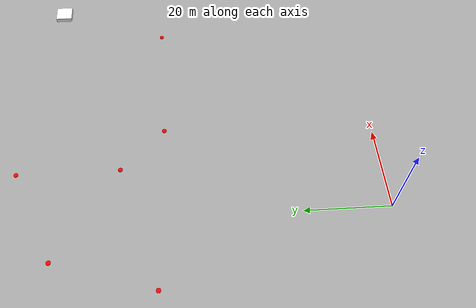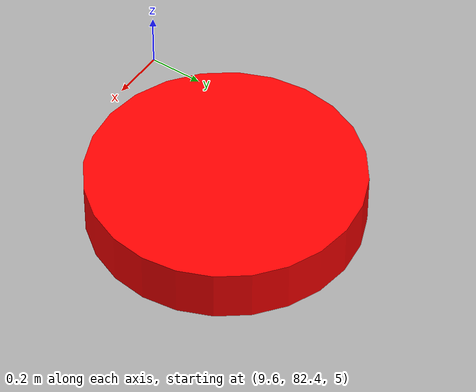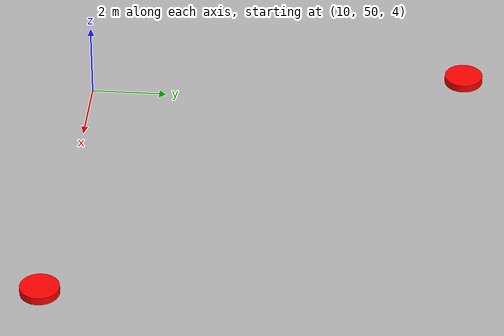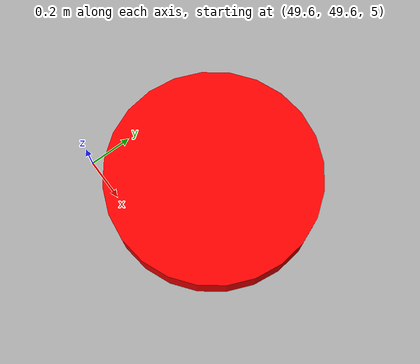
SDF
<sdf version="1.9">
 <world name="aerothon_ground2">
  <physics name="1ms" type="ignore">
   <max_step_size>0.001</max_step_size>
   <real_time_factor>1.0</real_time_factor>
  </physics>
  <plugin filename="gz-sim-physics-system" name="gz::sim::systems::Physics"/>
  <plugin filename="gz-sim-sensors-system" name="gz::sim::systems::Sensors">
   <render_engine>ogre2</render_engine>
  </plugin>
  <plugin filename="gz-sim-user-commands-system" name="gz::sim::systems::UserCommands"/>
  <plugin filename="gz-sim-scene-broadcaster-system" name="gz::sim::systems::SceneBroadcaster"/>
  <plugin filename="gz-sim-imu-system" name="gz::sim::systems::Imu"/>
  <plugin filename="gz-sim-navsat-system" name="gz::sim::systems::NavSat"/>
  <scene><ambient>1.0 1.0 1.0</ambient><background>0.8 0.8 0.8</background></scene>
  <spherical_coordinates>
   <latitude_deg>-35.363262</latitude_deg>
   <longitude_deg>149.165237</longitude_deg>
   <elevation>584</elevation>
   <heading_deg>0</heading_deg>
   <surface_model>EARTH_WGS84</surface_model>
  </spherical_coordinates>
  <light type="directional" name="sun">
   <pose>0 0 10 0 0 0</pose>
   <diffuse>0.8 0.8 0.8 1</diffuse>
   <specular>0.8 0.8 0.8 1</specular>
   <attenuation>
    <range>1000</range>
    <constant>0.9</constant>
    <linear>0.01</linear>
    <quadratic>0.001</quadratic>
   </attenuation>
   <direction>-0.5 0.1 -0.9</direction>
  </light>
  <model name="axes">
   <static>1</static>
   <link name="link">
    <visual name="r">
     <cast_shadows>0</cast_shadows>
     <pose>5 0 0.1 0 0 0</pose>
     <geometry><box><size>10 0.01 0.01</size></box></geometry>
     <material>
      <ambient>1 0 0 0.8</ambient>
      <diffuse>1 0 0 0.8</diffuse>
      <emissive>1 0 0 0.8</emissive>
      <specular>0.5 0.5 0.5 0.8</specular>
     </material>
    </visual>
    <visual name="g">
     <cast_shadows>0</cast_shadows>
     <pose>0 5 0.1 0 0 0</pose>
     <geometry><box><size>0.01 10 0.01</size></box></geometry>
     <material>
      <ambient>0 1 0 0.8</ambient>
      <diffuse>0 1 0 0.8</diffuse>
      <emissive>0 1 0 0.8</emissive>
      <specular>0.5 0.5 0.5 0.8</specular>
     </material>
    </visual>
    <visual name="b">
     <cast_shadows>0</cast_shadows>
     <pose>0 0 5.1 0 0 0</pose>
     <geometry><box><size>0.01 0.01 10</size></box></geometry>
     <material>
      <ambient>0 0 1 0.8</ambient>
      <diffuse>0 0 1 0.8</diffuse>
      <emissive>0 0 1 0.8</emissive>
      <specular>0.5 0.5 0.5 0.8</specular>
     </material>
    </visual>
    <sensor name="navsat_sensor" type="navsat"><always_on>1</always_on><update_rate>1</update_rate></sensor>
   </link>
  </model>
  <include><uri>model://hotspot.sdf</uri><name>h1</name><pose degrees="true">50 50 5 0 0 0</pose></include>
  <include><name>h2</name><uri>model://hotspot.sdf</uri><pose degrees="true">20 50 5 0 0 0</pose></include>
  <include><name>h3</name><uri>model://hotspot.sdf</uri><pose degrees="true">-18 52 5 0 0 0</pose></include>
  <include><name>h4</name><uri>model://hotspot.sdf</uri><pose degrees="true">10 83 5 0 0 0</pose></include>
  <include><name>h5</name><uri>model://hotspot.sdf</uri><pose degrees="true">10 60 5 0 0 0</pose></include>
  <include><name>h6</name><uri>model://hotspot.sdf</uri><pose degrees="true">-11 74 5 0 0 0</pose></include>
  <include><name>oda</name><uri>model://oda</uri><pose degrees="true">60 76 5 0 0 0</pose></include>
 </world>
</sdf>

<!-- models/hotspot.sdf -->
<sdf version="1.9">

    <model name="hotspot">
        <static>0</static>
        <link name="hlink">
            <collision name="collision">
                <geometry>
                    <cylinder>
                        <radius>0.5</radius>
                        <length>0.2</length>
                    </cylinder>
                </geometry>
            </collision>
            <visual name="hotspot_visual">
                <geometry>
                    <cylinder>
                        <radius>0.5</radius>
                        <length>0.2</length>
                    </cylinder>
                </geometry>
                <material>
                    <ambient>1 0 0 1</ambient>
                    <diffuse>1 0 0 1</diffuse>
                    <specular>1 0 0 1</specular>
                </material>
            </visual>
        </link>
    </model>

</sdf>

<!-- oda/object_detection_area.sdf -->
<sdf version="1.9">

    <geometry>
        <box>
            <size>4 4 1</size>
        </box>
    </geometry>

    <model name="oda">
        <static>0</static>
        <link name="hlink">
            <collision name="collision">
                <geometry>
                    <box>
                        <size>4 4 1</size>
                    </box>
                </geometry>
            </collision>
            <visual name="oda_visual_top">
                <pose>0 0 0.6 0 0 0</pose>
                <geometry>
                    <plane>
                        <size>4 4</size>

                    </plane>
                </geometry>
                <material>
                    <!-- https://classic.gazebosim.org/tutorials?tut=color_model -->
                    <ambient>1 1 1 1</ambient>
                    <diffuse>1 1 1 1</diffuse>
                    <specular>1 1 1 1</specular>
                    <pbr>
                        <metal>
                          <albedo_map>model://oda/shapes1.png</albedo_map>
                          <roughness>0.6</roughness>
                          <metalness>0</metalness>
                        </metal>
                    </pbr>
                </material>
            </visual>
            <visual name="oda_visual_sides">
                <geometry>
                    <box>
                        <size>4 4 1</size>
                    </box>
                </geometry>
                <material>
                    <ambient>1 1 1 1</ambient>
                    <diffuse>1 1 1 1</diffuse>
                    <specular>1 1 1 1</specular>
                </material>
            </visual>
        </link>
    </model>

</sdf>
